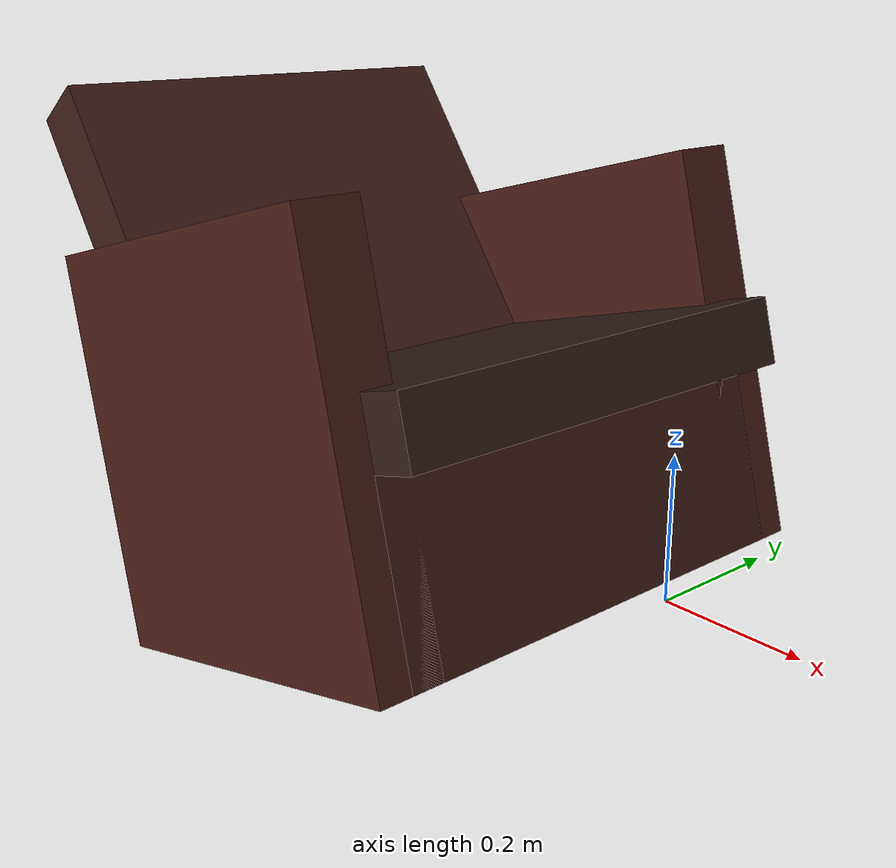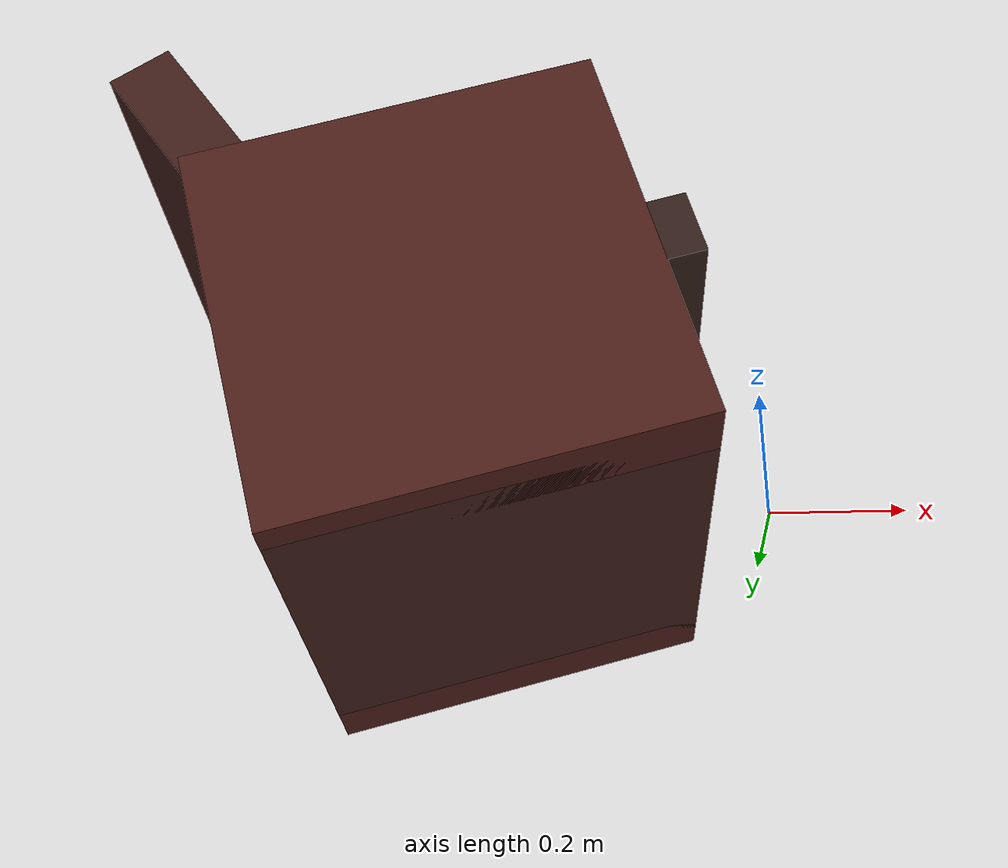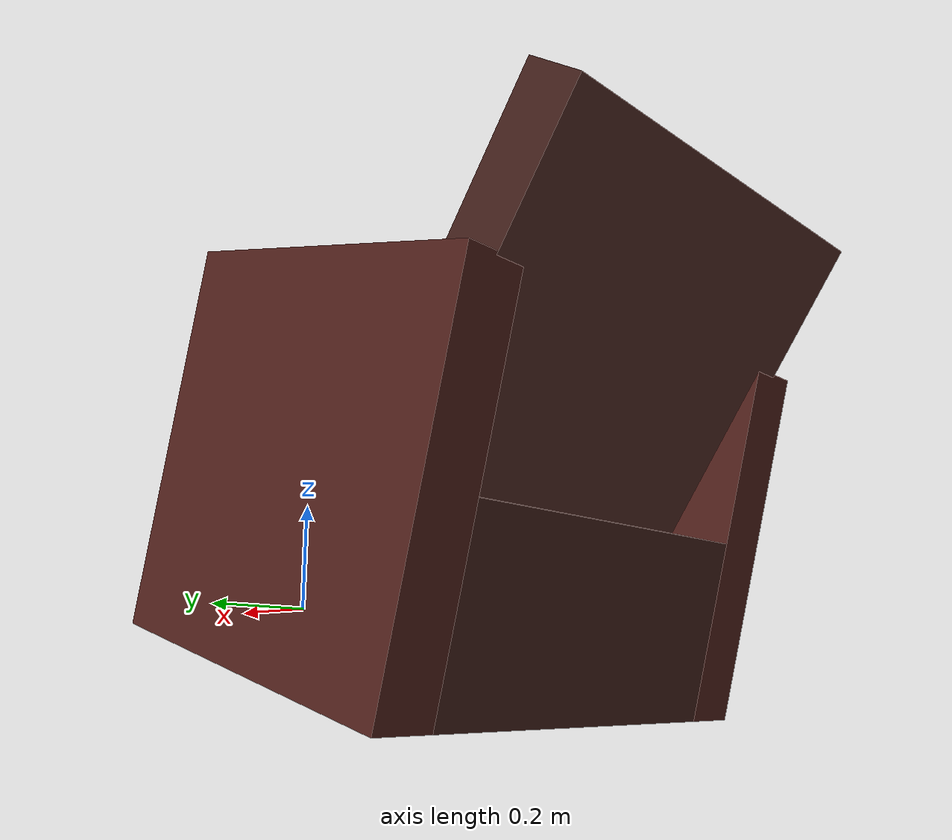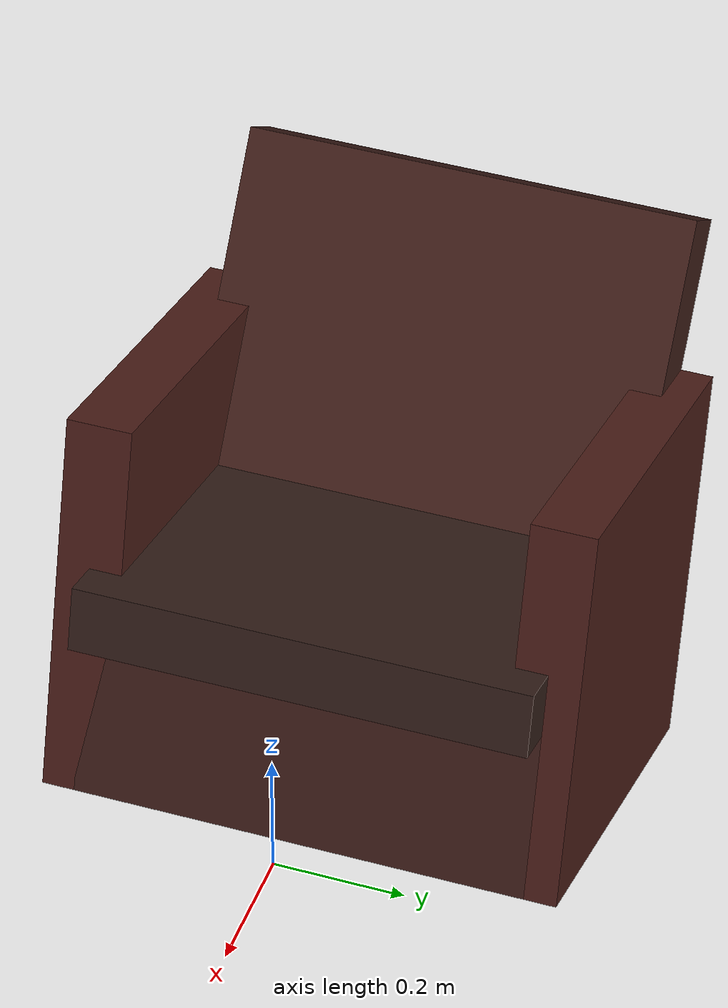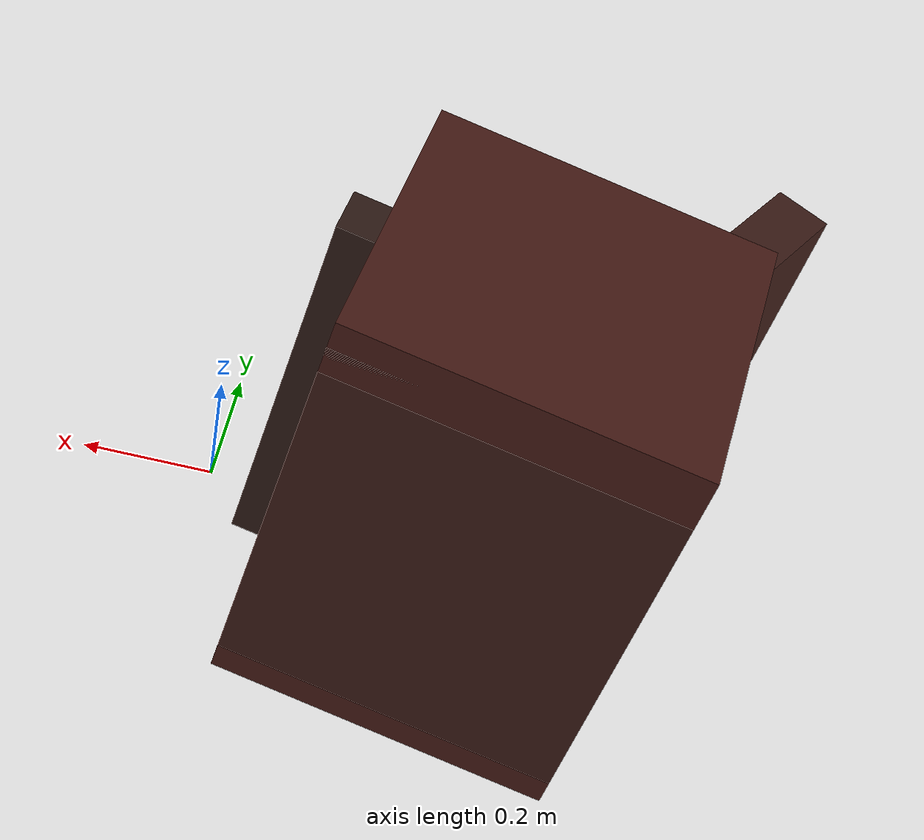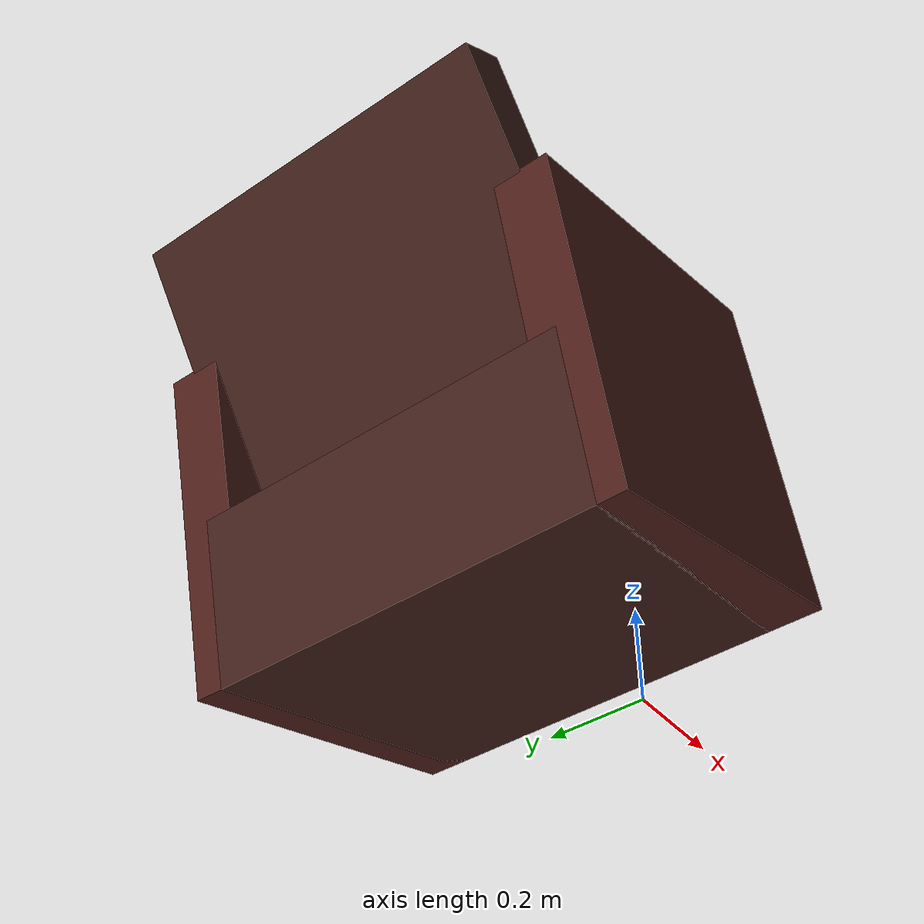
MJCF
<mujoco model="chair">
  <worldbody>
    <body name="chair" pos="-0.32 0 0.1" quat="0.99 0 -0.13 0">
      <geom name="seat" type="box" pos="0 0 0.12" size=".25 .35 .05" mass="10." material="seat"/>
      <geom name="seat_base" type="box" pos="-0.12 0 -0.05" size=".30 .35 .15" mass="10." material="back"/>
      <geom name="back" type="box" pos="-0.35 0 0.35" size=".05 0.35 .3" quat="0.984 0 -0.178 0" mass="10."  material="back"/>
      <geom name="chair_leg_1" type="box" pos="-0.12 0.35 0.1" size=".3 0.05 .3" mass="5." quat="1 0 0 0" material="legs"/>
      <geom name="chair_leg_2" type="box" pos="-0.12 -0.35 0.1" size=".3 0.05 .3" mass="5." quat="1 0 0 0" material="legs"/>
    </body>
  </worldbody>

  <asset>
    <material name="seat" rgba="0.2  0.12  0.1 1"/>
    <material name="back" rgba="0.25  0.12  0.1 1"/>
    <material name="legs" rgba="0.3  0.12  0.1 1"/>
  </asset>

  <keyframe>
    <key name="home"
    qpos="-0.4
  -0.042
   0.86
   1
   0.072
   0.0022
   0.065
  -0.036
  -0.12
  -0.089
   0.047
  -0.24
  -1.7
  -1.9
   0.13
  -0.075
   0.14
  -0.074
  -1.6
  -1.8
   0.067
   0.037
   0.62
  -0.8
  -0.75
   0.82
  -0.55
  -1.8"/>
  </keyframe>

</mujoco>
